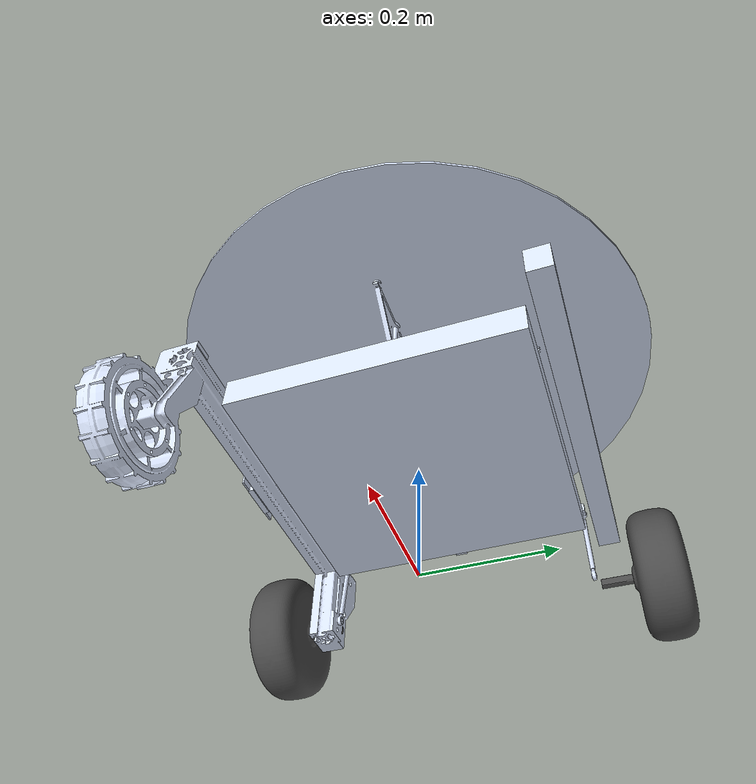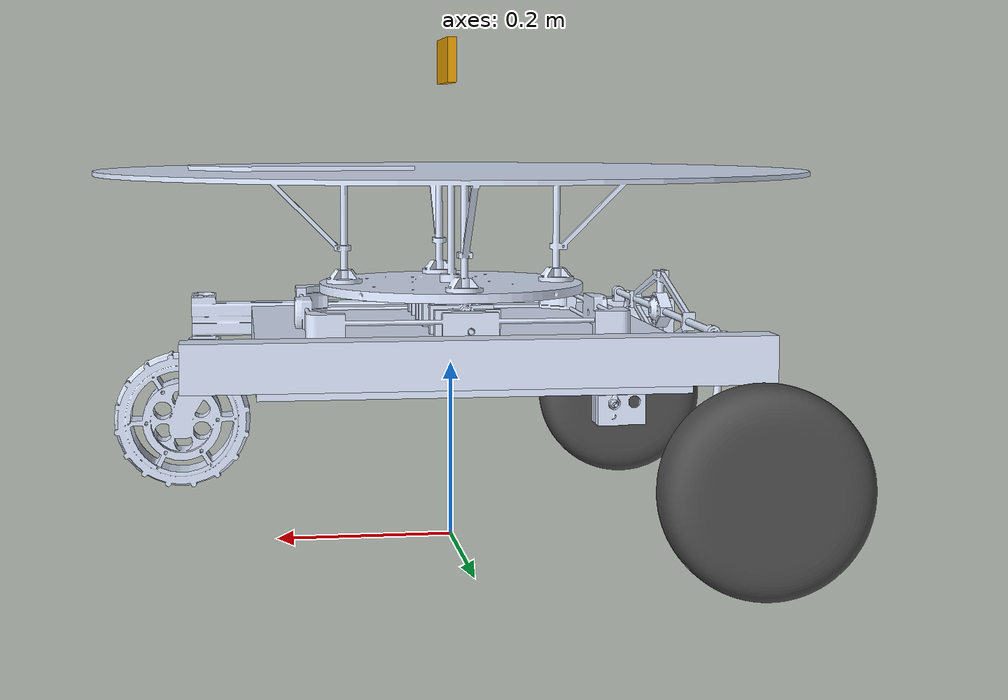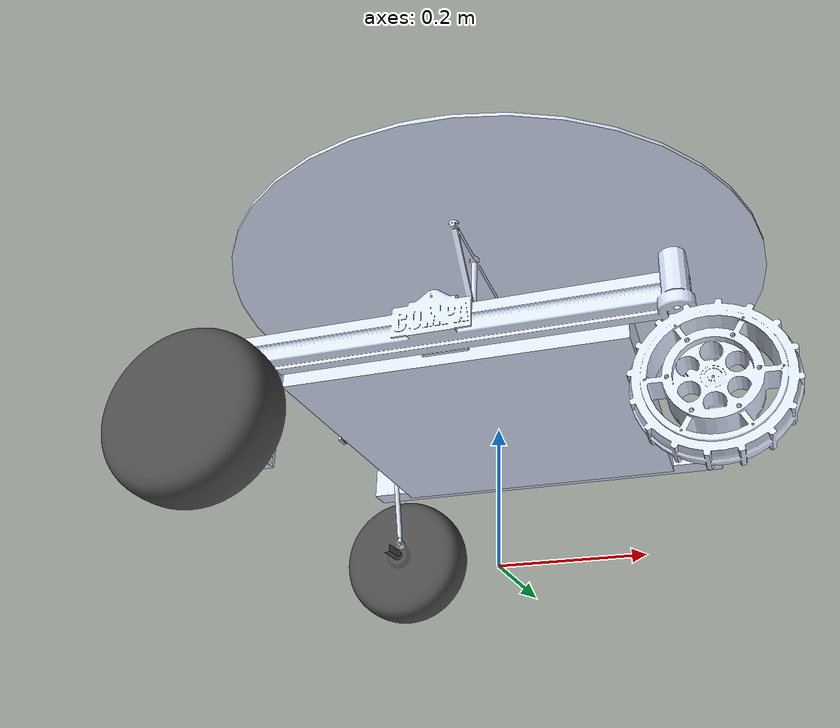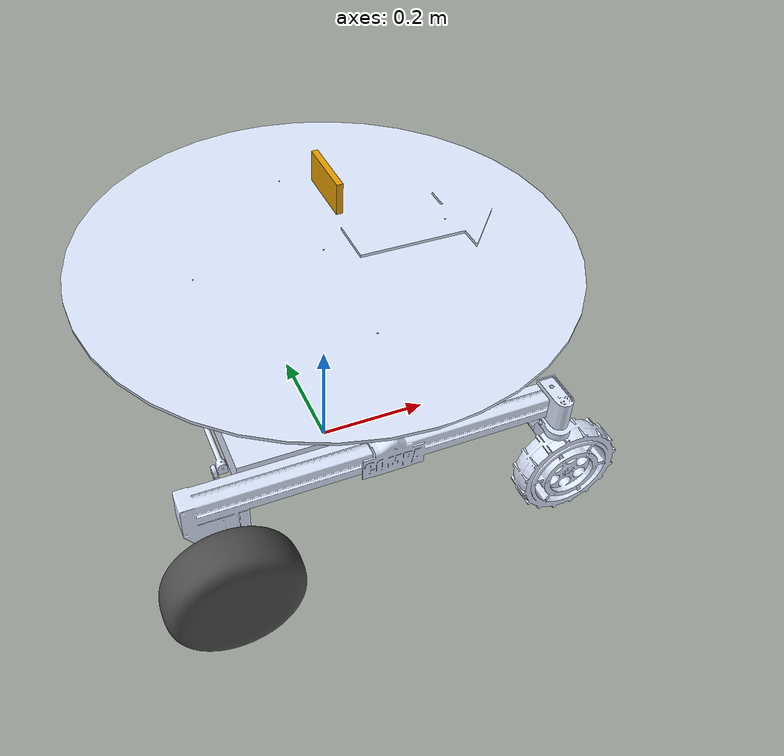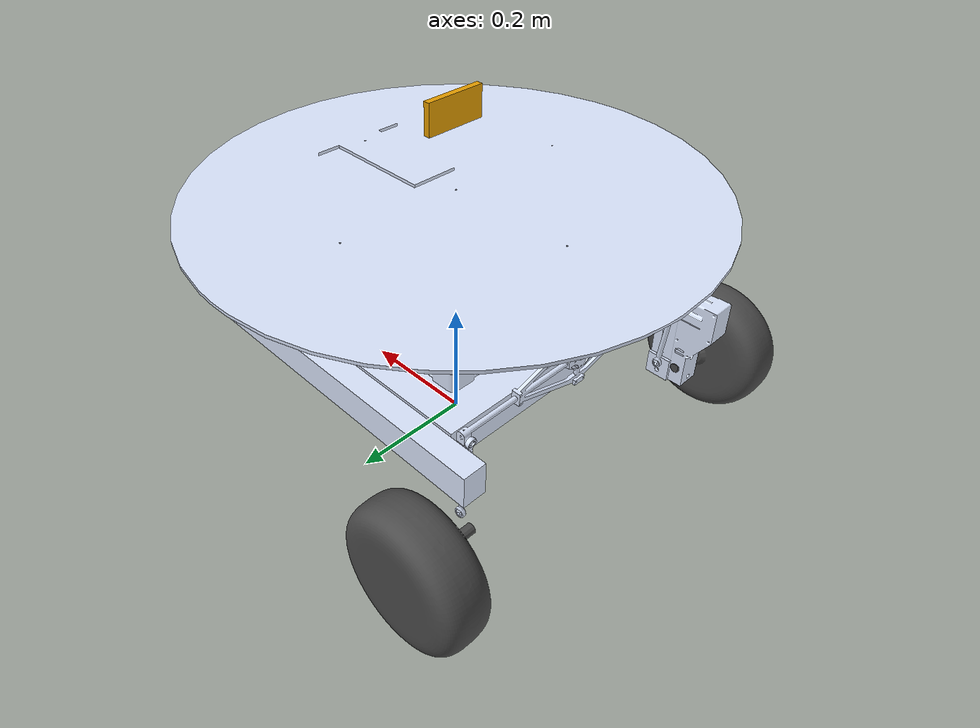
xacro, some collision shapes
<?xml version="1.0" encoding="utf-8"?>
<robot xmlns:xacro="http://www.ros.org/wiki/xacro"
  name="compa">

  <!-- To import ball joint, camera and more -->
  <xacro:include filename="common_properties.urdf.xacro" />
  <xacro:include filename="l455_realsense.urdf.xacro" />
  <xacro:include filename="compa_gazebo.urdf.xacro" />

  <!-- Base -->
  <link name="base_footprint" />

  <joint name="base_joint" type="fixed">
      <parent link="base_footprint" />
      <child link="base_link" />
      <origin xyz="0 0 0.22" rpy="0 0 0"/>
  </joint>

  <link name="base_link">
    <xacro:box_inertia m="4.77" x="0.45" y="0.45" z="0.05"
                    o_xyz="0 0 0" o_rpy="0 0 ${pi/2}" />
    <visual>
      <origin
        xyz="0 0 0"
        rpy="0 0 ${pi/2}" />
      <geometry>
        <mesh
          filename="package://compa_description/meshes/base_link.STL" />
      </geometry>
      <material
        name="">
        <color
          rgba="0.866666666666667 0.909803921568627 1 1" />
      </material>
    </visual>
    <collision>
      <origin
        xyz="0 0 0"
        rpy="0 0 ${pi/2}" />
      <geometry>
        <box size="0.45 0.45 0.05"/>
      </geometry>
    </collision>
  </link>

  <!-- Left Rocker -->
  <link name="right_rocker_link">
    <xacro:box_inertia m="4.36949644437113" x="0.6" y="0.037" z="0.05"
                    o_xyz="0 -0.072 -0.021" o_rpy="0 0 0" />
    <visual>
      <origin
        xyz="0 0 0"
        rpy="0 0 0" />
      <geometry>
        <mesh
          filename="package://compa_description/meshes/f_right_rocker_link.STL" />
      </geometry>
      <material
        name="">
        <color
          rgba="0.866666666666667 0.909803921568627 1 1" />
      </material>
    </visual>
    <collision>
      <origin
        xyz="0 -0.072 -0.021"
        rpy="0 0 0" />
      <geometry>
        <box size="0.6 0.037 0.05"/>
      </geometry>
    </collision>
  </link>

  <joint name="base_right_rocker_joint"
    type="continuous">
    <origin
      xyz="0 -0.184999999999999 0.0360999999999991"
      rpy="0 0 0" />
    <parent
      link="base_link" />
    <child
      link="right_rocker_link" />
    <axis
      xyz="0 1 0" />
  </joint>

  <link name="right_wheel_link">
    <xacro:cylinder_inertia m="2.74378098590227" r="0.1075" h="0.083"
                        o_xyz="0 0 0"
                        o_rpy="${-pi/2} 0 0" />
    <visual>
      <origin
        xyz="0.001 0.098 0"
        rpy="0 0 ${pi}" />
      <geometry>
        <mesh
          filename="package://compa_description/meshes/f_right_wheel_link.STL" />
      </geometry>
      <material
        name="">
        <color
          rgba="0.298039215686275 0.298039215686275 0.298039215686275 1" />
      </material>
    </visual>
    <collision>
      <origin
        xyz="0 0 0"
        rpy="${-pi/2} 0 0" />
      <geometry>
        <cylinder radius="0.1075" length="0.083" />
      </geometry>
    </collision>
  </link>

  <joint name="right_rocker_right_wheel_joint"
    type="continuous">
    <origin
      xyz="-0.27114 -0.14572 -0.1442"
      rpy="0 0 0" />
    <parent
      link="right_rocker_link" />
    <child
      link="right_wheel_link" />
    <axis
      xyz="0 1 0" />
  </joint>

  <link name="right_caster_wheel_link">
    <xacro:cylinder_inertia m="5.0" r="0.087" h="0.05"
                        o_xyz="0 0 0" o_rpy="${pi/2} 0 0" />
    <collision>
      <origin
        xyz="0 0 0"
        rpy="${pi/2} 0 0" />
      <geometry>
        <cylinder radius="0.087" length="0.05" />
      </geometry>
    </collision>
  </link>

  <joint name="right_rocker_right_caster_wheel_joint"
    type="continuous">
    <origin
      xyz="0.315 -0.10422 -0.1647"
      rpy="3.1416 0 0" />
    <parent
      link="right_rocker_link" />
    <child
      link="right_caster_wheel_link" />
    <axis
      xyz="0 1 0" />
  </joint>

  <!-- Right Rocker -->
  <link name="left_rocker_link">
    <xacro:box_inertia m="4.36949644437113" x="0.6" y="0.037" z="0.05"
                    o_xyz="0 0.072 -0.021" o_rpy="0 0 0" />
    <visual>
      <origin
        xyz="0 0 0"
        rpy="0 0 0" />
      <geometry>
        <mesh
          filename="package://compa_description/meshes/f_left_rocker_link.STL" />
      </geometry>
      <material
        name="">
        <color
          rgba="0.866666666666667 0.909803921568627 1 1" />
      </material>
    </visual>
    <collision>
      <origin
        xyz="0 0.072 -0.021"
        rpy="0 0 0" />
      <geometry>
        <box size="0.6 0.037 0.05"/>
      </geometry>
    </collision>
  </link>

  <joint name="base_left_rocker_joint"
    type="continuous">
    <origin
      xyz="0 0.185 0.0361"
      rpy="0 0 0" />
    <parent
      link="base_link" />
    <child
      link="left_rocker_link" />
    <axis
      xyz="0 1 0" />
  </joint>

  <link name="left_wheel_link">
    <xacro:cylinder_inertia m="2.74378098590227" r="0.1075" h="0.083"
                        o_xyz="0 0 0"
                        o_rpy="${-pi/2} 0 0" />
    <visual>
      <origin
        xyz="-0.001 -0.098 0"
        rpy="0 0 0" />
      <geometry>
        <mesh
          filename="package://compa_description/meshes/f_left_wheel_link.STL" />
      </geometry>
      <material
        name="">
        <color
          rgba="0.298039215686275 0.298039215686275 0.298039215686275 1" />
      </material>
    </visual>
    <collision>
      <origin
        xyz="0 0 0"
        rpy="${-pi/2} 0 0" />
      <geometry>
        <cylinder radius="0.1075" length="0.083" />
      </geometry>
    </collision>
  </link>

  <joint name="left_rocker_left_wheel_joint"
    type="continuous">
    <origin
      xyz="-0.27114 0.14572 -0.1442"
      rpy="0 0 0" />
    <parent
      link="left_rocker_link" />
    <child
      link="left_wheel_link" />
    <axis
      xyz="0 1 0" />
  </joint>

  <link name="left_caster_wheel_link">
    <xacro:cylinder_inertia m="5.0" r="0.087" h="0.05"
                        o_xyz="0 0 0" o_rpy="${pi/2} 0 0" />
    <collision>
      <origin
        xyz="0 0 0"
        rpy="${pi/2} 0 0" />
      <geometry>
        <cylinder radius="0.087" length="0.05" />
      </geometry>
    </collision>
  </link>

  <joint name="left_rocker_left_caster_wheel_joint"
    type="continuous">
    <origin
      xyz="0.315 0.10422 -0.1647"
      rpy="3.1416 0 0" />
    <parent
      link="left_rocker_link" />
    <child
      link="left_caster_wheel_link" />
    <axis
      xyz="0 1 0" />
  </joint>

  <!-- Gimbal -->
  <link name="roll_link">
    <xacro:box_inertia m="0.944517139921142" x="0.35" y="0.35" z="0.05"
                    o_xyz="0 0 0" o_rpy="0 0 0" />
    <visual>
      <origin
        xyz="0 0 0"
        rpy="0 0 0" />
      <geometry>
        <mesh
          filename="package://compa_description/meshes/roll_link.STL" />
      </geometry>
      <material
        name="">
        <color
          rgba="0.866666666666667 0.909803921568627 1 1" />
      </material>
    </visual>
    <collision>
      <origin
        xyz="0 0 0"
        rpy="0 0 0" />
      <geometry>
        <box size="0.35 0.35 0.05"/>
      </geometry>
    </collision>
  </link>

  <joint name="base_roll_joint"
    type="continuous">
    <origin
      xyz="0 0 0.036"
      rpy="0 0 0" />
    <parent
      link="base_link" />
    <child
      link="roll_link" />
    <axis
      xyz="1 0 0" />
  </joint>

  <link name="pitch_link">
    <inertial>
      <origin
        xyz="-1.53612491524818E-06 0.0452818711897623 -0.00479118208676022"
        rpy="0 0 0" />
      <mass
        value="0.373399633584383" />
      <inertia
        ixx="0.000245121023174029"
        ixy="-1.04461141223475E-09"
        ixz="-5.02589593844006E-10"
        iyy="0.000177685960624184"
        iyz="-2.52895140798418E-05"
        izz="0.000294726650760256" />
    </inertial>
    <visual>
      <origin
        xyz="0 0 0"
        rpy="0 0 0" />
      <geometry>
        <mesh
          filename="package://compa_description/meshes/pitch_link.STL" />
      </geometry>
      <material
        name="">
        <color
          rgba="0.866666666666667 0.909803921568627 1 1" />
      </material>
    </visual>
    <collision>
      <origin
        xyz="0 0 0"
        rpy="0 0 0" />
      <geometry>
        <box size="0.07 0.3 0.05"/>
      </geometry>
    </collision>
  </link>

  <joint name="roll_pitch_joint"
    type="continuous">
    <origin
      xyz="0 0 0"
      rpy="0 0 0" /> <!-- was xyz=-0.0035 0 0 -->
    <parent
      link="roll_link" />
    <child
      link="pitch_link" />
    <axis
      xyz="0 1 0" />
  </joint>

  <link name="yaw_plate_link">
    <inertial>
      <origin
        xyz="-0.00447913610788967 2.41196326362311E-05 -0.127371508973676"
        rpy="0 0 0" />
      <mass
        value="4.77359574593992" />
      <inertia
        ixx="0.137280882823545"
        ixy="2.12673978923993E-05"
        ixz="0.000121233585196392"
        iyy="0.141251293392401"
        iyz="-6.47537750501791E-07"
        izz="0.27812043683305" />
    </inertial>
    <visual>
      <origin
        xyz="0 0 0"
        rpy="0 0 ${pi}" />
      <geometry>
        <mesh
          filename="package://compa_description/meshes/yaw_plate_link.STL" />
      </geometry>
      <material
        name="">
        <color
          rgba="0.866666666666667 0.909803921568627 1 1" />
      </material>
    </visual>
    <collision>
      <origin
        xyz="0 0 0.127371508973676"
        rpy="0 0 0" />
      <geometry>
        <cylinder radius="0.4" length="0.01"/>
      </geometry>
    </collision>
  </link>

  <joint name="pitch_yaw_plate_joint"
    type="continuous">
    <origin
      xyz="0 0 0.0375"
      rpy="0 0 0" />
    <parent
      link="pitch_link" />
    <child
      link="yaw_plate_link" />
    <axis
      xyz="0 0 1" />
  </joint>

  <!-- ROCKER LINKS -->
  <link name="leverage_link">
    <inertial>
      <origin
        xyz="-0.0117745961443602 -3.98443129349599E-08 -0.000252346332911095"
        rpy="0 0 0" />
      <mass
        value="0.16962532718169" />
      <inertia
        ixx="0.00130897914050679"
        ixy="3.29957052469139E-12"
        ixz="-4.97883603410576E-09"
        iyy="5.88902413778525E-05"
        iyz="5.89893406244419E-11"
        izz="0.00125385800443425" />
    </inertial>
    <visual>
      <origin
        xyz="0 0 0"
        rpy="0 0 0" />
      <geometry>
        <mesh
          filename="package://compa_description/meshes/leverage_link.STL" />
      </geometry>
      <material
        name="">
        <color
          rgba="0.866666666666667 0.909803921568627 1 1" />
      </material>
    </visual>
    <collision>
      <origin
        xyz="0 0 0"
        rpy="0 0 0" />
      <geometry>
        <box size="0.01 0.45 0.07"/>
      </geometry>
    </collision>
  </link>

  <joint name="base_leverage_joint"
    type="revolute">
    <origin
      xyz="-0.2332 0 0.03826"
      rpy="0 0 0" />
    <parent
      link="base_link" />
    <child
      link="leverage_link" />
    <axis
      xyz="1 0 0" />
    <limit effort="20" velocity="1.0" lower="${-pi/12}" upper="${pi/12}"/>
  </joint>

  <!-- Right Side Rocker -->
  <link name="left_rod_sphere1_link">
    <inertial>
      <origin
        xyz="0.00536589340030799 -0.00133128905926821 -0.00337989932446242"
        rpy="0 0 0" />
      <mass
        value="0.0013014428485605" />
      <inertia
        ixx="1.60882150250237E-08"
        ixy="-5.10245749664677E-18"
        ixz="-4.13590306276514E-24"
        iyy="2.14375515430229E-08"
        iyz="3.44035962441191E-18"
        izz="1.60882150250237E-08" />
    </inertial>
    <visual>
      <origin
        xyz="0 0 0"
        rpy="0 0 0" />
      <geometry>
        <mesh
          filename="package://compa_description/meshes/sphere_link.STL" />
      </geometry>
      <material
        name="">
        <color
          rgba="0.866666666666667 0.909803921568627 1 1" />
      </material>
    </visual>
    <collision>
      <origin
        xyz="0 0 0"
        rpy="0 0 0" />
      <geometry>
        <sphere radius="0.0055"/>
      </geometry>
    </collision>
  </link>

  <joint name="leverage_left_rod_sphere1_joint"
    type="fixed">
    <origin
      xyz="-0.024 0.222 -0.0064"
      rpy="0 0 1.5708" />
    <parent
      link="leverage_link" />
    <child
      link="left_rod_sphere1_link" />
  </joint>

  <link name="left_rod_link">
    <inertial>
      <origin
        xyz="0.00807999415461744 0.00132856456720257 -0.0766613810604778"
        rpy="0 0 0" />
      <mass
        value="0.0151753641367165" />
      <inertia
        ixx="3.27980169789714E-05"
        ixy="-5.95699180514602E-08"
        ixz="3.43503884989101E-06"
        iyy="3.31503405889854E-05"
        iyz="5.65386918327902E-07"
        izz="5.68009921841292E-07" />
    </inertial>
    <visual>
      <origin
        xyz="0 0 -0.07056"
        rpy="0 0 ${pi/2}" />
      <geometry>
        <mesh
          filename="package://compa_description/meshes/rod_link.STL" />
      </geometry>
      <material
        name="">
        <color
          rgba="0.866666666666667 0.909803921568627 1 1" />
      </material>
    </visual>
    <collision>
      <origin
        xyz="0 0 -0.07056"
        rpy="0 0 ${pi/2}" />
      <geometry>
        <cylinder radius="0.0035" length="${2*0.07056 - 0.007}"/>
      </geometry>
    </collision>
  </link>

  <xacro:ball_joint parent="left_rod_sphere1_link" child="left_rod_link"
                   joint_prefix="left_rod_sphere1" roll_offset="-0.1075" pitch_offset="-0.0171" />

  <link name="tmp_left_rod_sphere2_link">
    <inertial>
      <mass value="0.001"/>
      <origin xyz="0 0 0" rpy="0 0 0"/>
      <inertia ixx="0.000001" ixy="0" ixz="0" iyy="0.000001" iyz="0" izz="0.000001"/>
    </inertial>
  </link>

  <xacro:ball_joint parent="left_rod_link" child="tmp_left_rod_sphere2_link"
                   joint_prefix="tmp_left_rod_sphere2" z_offset="${-2*0.07056}" />

  <link name="left_rod_sphere2_link">
    <inertial>
      <origin
        xyz="0 0 0"
        rpy="0 0 0" />
      <mass
        value="0.0013014428485605" />
      <inertia
        ixx="1.60882150250237E-08"
        ixy="3.36977260250646E-23"
        ixz="4.13590306276514E-25"
        iyy="2.14375515430229E-08"
        iyz="-4.41668705567546E-23"
        izz="1.60882150250237E-08" />
    </inertial>
    <visual>
      <origin
        xyz="0 0 0"
        rpy="0 0 0" />
      <geometry>
        <mesh
          filename="package://compa_description/meshes/sphere_link.STL" />
      </geometry>
      <material
        name="">
        <color
          rgba="0.866666666666667 0.909803921568627 1 1" />
      </material>
    </visual>
    <collision>
      <origin
        xyz="0 0 0"
        rpy="0 0 0" />
      <geometry>
        <sphere radius="0.0055"/>
      </geometry>
    </collision>
  </link>

  <joint name="left_rocker_rod_sphere2_joint"
    type="fixed">
    <origin
      xyz="-0.24206 0.0394 -0.14451"
      rpy="0 0 0" />
    <parent
      link="left_rocker_link" />
    <child
      link="left_rod_sphere2_link" />
  </joint>

  <!-- Left Side Rocker -->
  <link name="right_rod_sphere1_link">
    <inertial>
      <origin
        xyz="0.00532991500866456 0.00018815731486499 0.00563172775996076"
        rpy="0 0 0" />
      <mass
        value="0.0013014428485605" />
      <inertia
        ixx="1.60882150250237E-08"
        ixy="4.22440977042159E-18"
        ixz="-1.65436122510606E-24"
        iyy="2.14375515430229E-08"
        iyz="4.47501438672121E-18"
        izz="1.60882150250237E-08" />
    </inertial>
    <visual>
      <origin
        xyz="0 0 0"
        rpy="0 0 0" />
      <geometry>
        <mesh
          filename="package://compa_description/meshes/sphere_link.STL" />
      </geometry>
      <material
        name="">
        <color
          rgba="0.866666666666667 0.909803921568627 1 1" />
      </material>
    </visual>
    <collision>
      <origin
        xyz="0 0 0"
        rpy="0 0 0" />
      <geometry>
        <sphere radius="0.0055"/>
      </geometry>
    </collision>
  </link>

  <joint name="leverage_right_rod_sphere1_joint"
    type="fixed">
    <origin
      xyz="-0.024 -0.222 -0.0064"
      rpy="0 0 1.5708" />
    <parent
      link="leverage_link" />
    <child
      link="right_rod_sphere1_link" />
  </joint>

  <link name="right_rod_link">
    <inertial>
      <origin
        xyz="0.00658807175193704 0.00108313190898462 -0.0625056704234719"
        rpy="0 0 0" />
      <mass
        value="0.0151753392872247" />
      <inertia
        ixx="3.27979872110313E-05"
        ixy="-5.95691313888852E-08"
        ixz="3.43504152367061E-06"
        iyy="3.31503109311604E-05"
        iyz="5.65357219897624E-07"
        izz="5.6800600012109E-07" />
    </inertial>
    <visual>
      <origin
        xyz="0 0 -0.07056"
        rpy="0 0 ${pi/2}" />
      <geometry>
        <mesh
          filename="package://compa_description/meshes/rod_link.STL" />
      </geometry>
      <material
        name="">
        <color
          rgba="0.866666666666667 0.909803921568627 1 1" />
      </material>
    </visual>
    <collision>
      <origin
        xyz="0 0 -0.07056"
        rpy="0 0 ${pi/2}" />
      <geometry>
        <cylinder radius="0.0035" length="${2*0.07056 - 0.007}"/>
      </geometry>
    </collision>
  </link>

  <xacro:ball_joint parent="right_rod_sphere1_link" child="right_rod_link"
                   joint_prefix="right_rod_sphere1" roll_offset="-0.1075" pitch_offset="0.0171" />

  <link name="tmp_right_rod_sphere2_link">
    <inertial>
      <mass value="0.001"/>
      <origin xyz="0 0 0" rpy="0 0 0"/>
      <inertia ixx="0.000001" ixy="0" ixz="0" iyy="0.000001" iyz="0" izz="0.000001"/>
    </inertial>
  </link>

  <xacro:ball_joint parent="right_rod_link" child="tmp_right_rod_sphere2_link"
                   joint_prefix="tmp_right_rod_sphere2" z_offset="${-2*0.07056}" />

  <link name="right_rod_sphere2_link">
    <inertial>
      <origin
        xyz="0 0 0"
        rpy="0 0 0" />
      <mass
        value="0.0013014428485605" />
      <inertia
        ixx="1.60882150250237E-08"
        ixy="4.03175187101389E-23"
        ixz="1.34416849539867E-24"
        iyy="2.14375515430229E-08"
        iyz="-9.48287106740403E-24"
        izz="1.60882150250237E-08" />
    </inertial>
    <visual>
      <origin
        xyz="0 0 0"
        rpy="0 0 0" />
      <geometry>
        <mesh
          filename="package://compa_description/meshes/sphere_link.STL" />
      </geometry>
      <material
        name="">
        <color
          rgba="0.866666666666667 0.909803921568627 1 1" />
      </material>
    </visual>
    <collision>
      <origin
        xyz="0 0 0"
        rpy="0 0 0" />
      <geometry>
        <sphere radius="0.0055"/>
      </geometry>
    </collision>
  </link>

  <joint name="right_rocker_rod_sphere2_joint"
    type="fixed">
    <origin
      xyz="-0.24206 -0.0394 -0.14451"
      rpy="0 0 0" />
    <parent
      link="right_rocker_link" />
    <child
      link="right_rod_sphere2_link" />
  </joint>

</robot>

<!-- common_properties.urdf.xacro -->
<robot xmlns:xacro="http://www.ros.org/wiki/xacro">

    <xacro:macro name="ball_joint" params="parent child joint_prefix
        x_offset:=0 y_offset:=0 z_offset:=0
        roll_offset:=0 pitch_offset:=0 yaw_offset:=0
        mass:=0.001 r:=0.01 lim:=1.57">

        <!-- Isotropic inertia for a solid sphere: I = (2/5) m r^2  -->
        <xacro:property name="I_diag" value="${0.4*mass*(r**2)}"/>

        <link name="${joint_prefix}_t1">
            <inertial>
            <mass value="${mass}"/>
            <origin xyz="0 0 0" rpy="0 0 0"/>
            <inertia ixx="${I_diag}" ixy="0" ixz="0" iyy="${I_diag}" iyz="0" izz="${I_diag}"/>
            </inertial>
        </link>

        <link name="${joint_prefix}_t2">
            <inertial>
            <mass value="${mass}"/>
            <origin xyz="0 0 0" rpy="0 0 0"/>
            <inertia ixx="${I_diag}" ixy="0" ixz="0" iyy="${I_diag}" iyz="0" izz="${I_diag}"/>
            </inertial>
        </link>

        <link name="${joint_prefix}_t3">
            <inertial>
            <mass value="${mass}"/>
            <origin xyz="0 0 0" rpy="0 0 0"/>
            <inertia ixx="${I_diag}" ixy="0" ixz="0" iyy="${I_diag}" iyz="0" izz="${I_diag}"/>
            </inertial>
        </link>

        <joint name="${joint_prefix}_rev_x" type="revolute">
            <parent link="${parent}"/><child link="${joint_prefix}_t1"/>
            <origin xyz="${x_offset} ${y_offset} ${z_offset}" rpy="${roll_offset} 0 0"/><axis xyz="1 0 0"/>
            <limit lower="-${lim}" upper="${lim}" effort="1" velocity="1"/>
        </joint>

        <joint name="${joint_prefix}_rev_y" type="revolute">
            <parent link="${joint_prefix}_t1"/><child link="${joint_prefix}_t2"/>
            <origin xyz="0 0 0" rpy="0 ${pitch_offset} 0"/><axis xyz="0 1 0"/>
            <limit lower="-${lim}" upper="${lim}" effort="1" velocity="1"/>
        </joint>

        <joint name="${joint_prefix}_rev_z" type="continuous">
            <parent link="${joint_prefix}_t2"/><child link="${joint_prefix}_t3"/>
            <origin xyz="0 0 0" rpy="0 0 ${yaw_offset}"/><axis xyz="0 0 1"/>
        </joint>

        <joint name="${joint_prefix}_fixed" type="fixed">
            <parent link="${joint_prefix}_t3"/><child link="${child}"/>
            <origin xyz="0 0 0" rpy="0 0 0"/>
        </joint>
    </xacro:macro>

    <xacro:macro name="box_inertia" params="m x y z o_xyz o_rpy">
        <inertial>
            <mass value="${m}" />
            <origin xyz="${o_xyz}" rpy="${o_rpy}" />
            <inertia ixx="${(m/12) * (y*y + z*z)}" ixy="0" ixz="0"
                     iyy="${(m/12) * (x*x + z*z)}" iyz="0"
                     izz="${(m/12) * (y*y + x*x)}" />
        </inertial>
    </xacro:macro>

    <xacro:macro name="sphere_inertia" params="m r o_xyz o_rpy">
        <inertial>
            <mass value="${m}" />
            <origin xyz="${o_xyz}" rpy="${o_rpy}" />
            <inertia ixx="${(2/5) * m * r*r}" ixy="0" ixz="0"
                    iyy="${(2/5) * m * r*r}" iyz="0"
                    izz="${(2/5) * m * r*r}" />
        </inertial>
    </xacro:macro>

    <xacro:macro name="cylinder_inertia" params="m r h o_xyz:='0 0 0' o_rpy:='0 0 0'">
        <inertial>
            <mass value="${m}" />
            <origin xyz="${o_xyz}" rpy="${o_rpy}" />
            <inertia ixx="${(m/12) * (3*r*r + h*h)}" ixy="0" ixz="0"
                     iyy="${(m/12) * (3*r*r + h*h)}" iyz="0"
                     izz="${(m/2) * (r*r)}" />
        </inertial>
    </xacro:macro>

</robot>

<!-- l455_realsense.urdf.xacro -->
<robot xmlns:xacro="http://www.ros.org/wiki/xacro">

    <xacro:property name="l455_length" value="0.01" />
    <xacro:property name="l455_width" value="0.1" />
    <xacro:property name="l455_height" value="0.05" />

    <link name="l455_link">
        <visual>
            <geometry>
                <box size="${l455_length} ${l455_width} ${l455_height}" />
            </geometry>
            <origin xyz="${l455_length / 2.0} 0 0" rpy="0 0 0" />
        </visual>
        <collision>
            <geometry>
                <box size="${l455_length} ${l455_width} ${l455_height}" />
            </geometry>
        </collision>
        <xacro:box_inertia m="0.1" x="${l455_length}" y="${l455_width}" z="${l455_height}"
                        o_xyz="${l455_length / 2.0} 0 0" o_rpy="0 0 0" />
    </link>

    <link name="l455_link_optical">
    </link>

    <joint name="yaw_plate_l455_joint" type="fixed">
        <parent link="yaw_plate_link" />
        <child link="l455_link" />
        <origin xyz="0 0 0.25" rpy="0 0 0"/>
    </joint>

    <!-- generate an optical frame
    http://www.ros.org/reps/rep-0103.html#suffix-frames
    so that ros and opencv can operate on the l455 frame correctly
    -->
    <joint name="l455_optical_joint" type="fixed">
        <!-- these values have to be these values otherwise the gazebo l455
            image won't be aligned properly with the frame it is supposedly
            originating from -->
        <parent link="l455_link"/>
        <child link="l455_link_optical"/>
        <origin xyz="0 0 0" rpy="${-pi/2} 0 ${-pi/2}"/>
    </joint>

    <gazebo reference="l455_link">
        <sensor name="l455_cameracolor" type="camera">
            <camera>
                <horizontal_fov>1.22</horizontal_fov> <!-- approx - tune if necessary -->
                <image><width>1280</width><height>720</height><format>RGB_INT8</format></image>
                <clip><near>0.1</near><far>10</far></clip>
                <noise>
                    <type>gaussian</type>
                    <mean>0.0</mean>
                    <stddev>0.007</stddev>
                </noise>
            </camera>
            <always_on>1</always_on>
            <update_rate>10</update_rate>
            <visualize>1</visualize>
        </sensor>

        <sensor name="l455_cameradepth" type="depth">
            <camera>
                <horizontal_fov>1.22</horizontal_fov> <!-- approx - tune if necessary -->
                <image><width>1280</width><height>720</height><format>RGB_INT8</format></image>
                <clip><near>0.1</near><far>10</far></clip>
                <noise>
                    <type>gaussian</type>
                    <mean>0.0</mean>
                    <stddev>0.02</stddev>
                </noise>
            </camera>
            <always_on>1</always_on>
            <update_rate>5</update_rate>
            <visualize>0</visualize>
        </sensor>
    </gazebo>

</robot>
